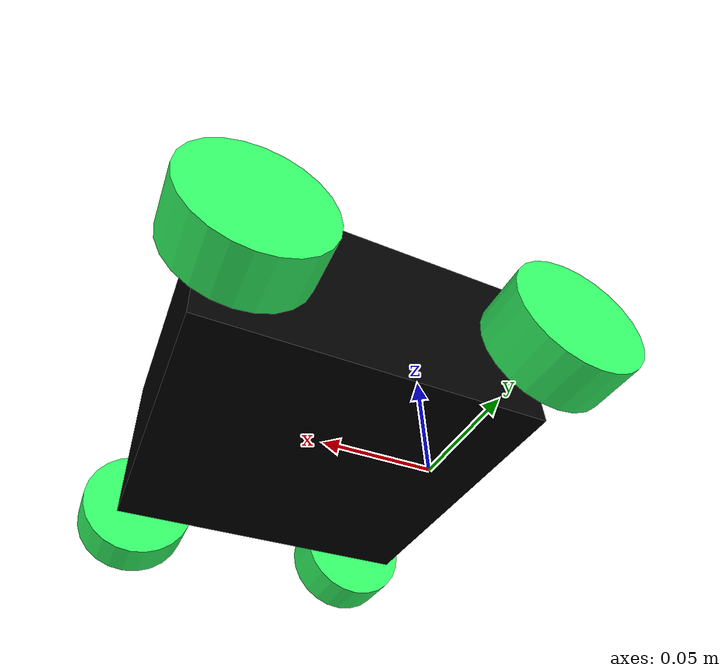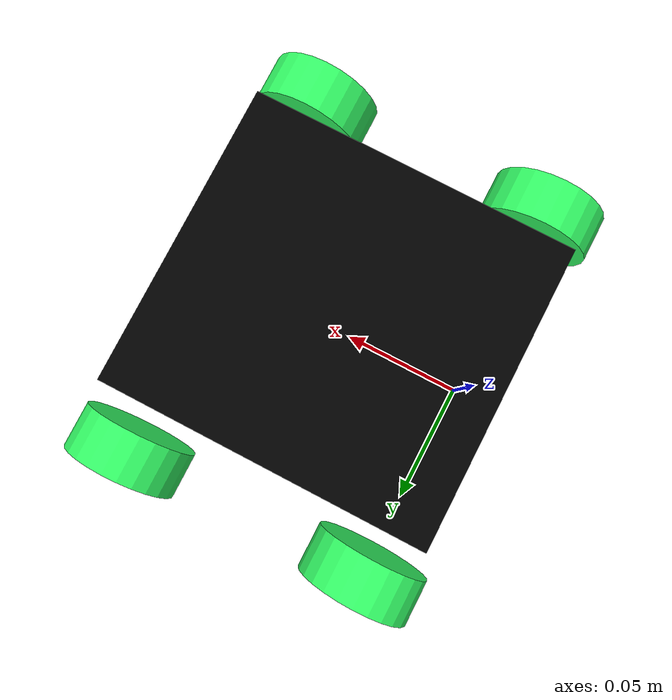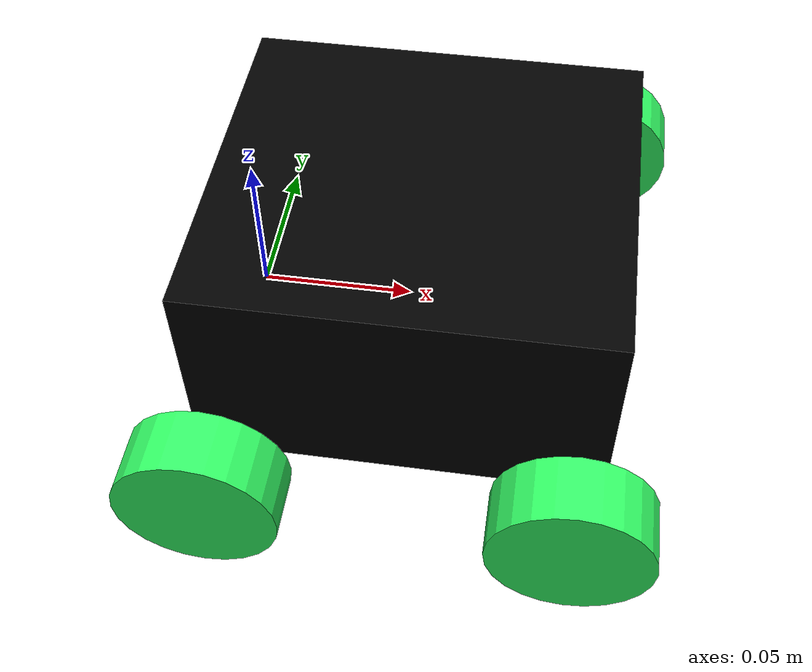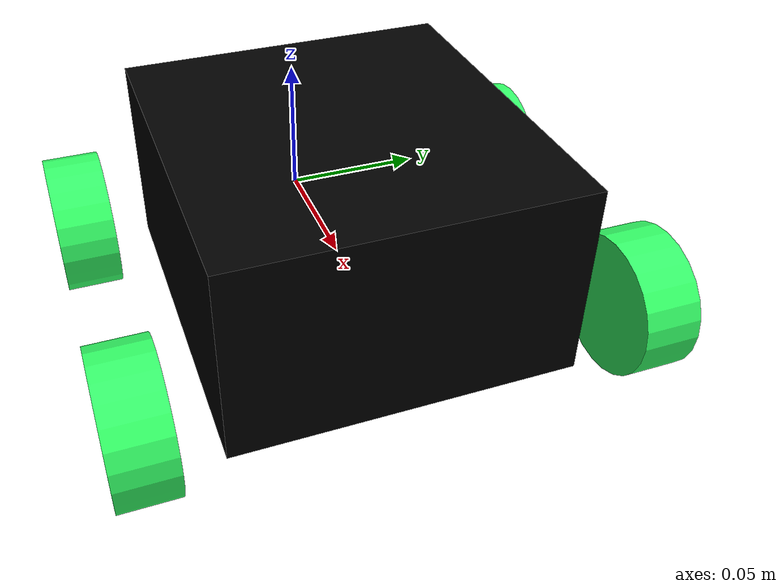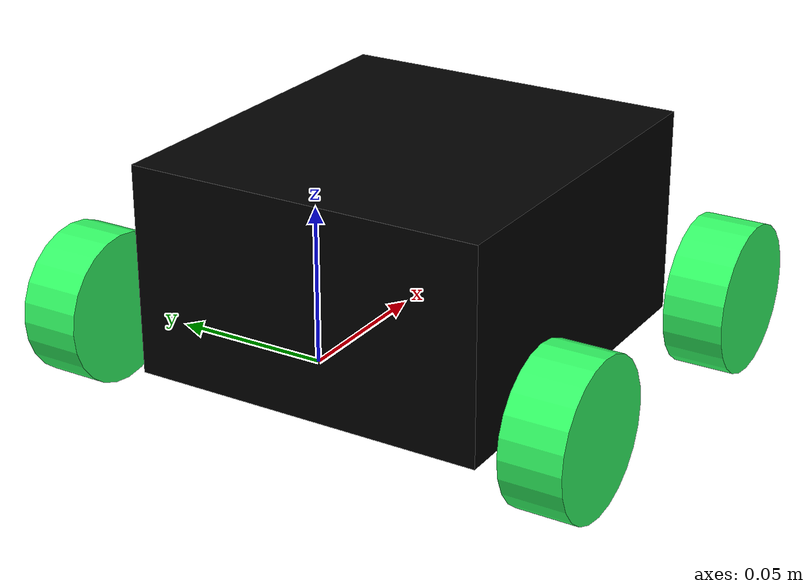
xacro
<?xml version="1.0"?>
<robot xmlns:xacro="http://www.ros.org/wiki/xacro">

   <xacro:include filename="inertial_macros.xacro"/>

    <material name="white">
        <color rgba="1 1 1 1"/>
    </material>

    <material name="orange">
        <color rgba="1 0.3 0.1 1"/>
    </material>

    <material name="blue">
        <color rgba="0.2 0.2 1 1"/>
    </material>

    <material name="black">
        <color rgba="0 0 0 1"/>
    </material>

    <material name="red">
        <color rgba="1 0 0 1"/>
    </material>

    <material name="green">
        <color rgba="0.2 1 0.4 1"/>
    </material>

    <link name="base_link">

    </link>

     <!-- BASE_FOOTPRINT LINK -->

     <joint name="base_footprint_joint" type="fixed">
        <parent link="base_link"/>
        <child link="base_footprint"/>
        <origin xyz="0 0 0" rpy="0 0 0"/>
    </joint>

    <link name="base_footprint">
    </link>

<!-- Chassis -->

    <joint name="chassis_joint" type="fixed">

        <parent link="base_link"/>
        <child link="chassis"/>
        <origin xyz="-0.01 0 0"/>

    </joint>

    <link name="chassis">
        <visual>
            <origin xyz="0.065 0 0.02"/>
            <geometry>
                <box size="0.13 0.12 0.07"/>
            </geometry>
            <material name="black"/>
        </visual>
        <collision>
            <origin xyz="0.065 0 0.02" rpy="0 0 0"/>
            <geometry>
                <box size="0.13 0.12 0.07"/>
            </geometry>
        </collision>

        <xacro:inertial_box mass="0.5" x="0.13" y="0.12" z="0.07">
           <origin xyz="0.065 0 0.02" rpy="0 0 0"/>
       </xacro:inertial_box>

    </link>
    <gazebo reference="chassis">
        <material>Gazebo/Black</material>

    </gazebo>

<!-- Left Wheel -->

    <joint name="left_wheel_joint" type="continuous">

        <parent link="base_link"/>
        <child link="left_wheel"/>
        <origin xyz="0 0.085 0" rpy="-${pi/2} 0 0"/>
        <axis xyz="0 0 1"/>

    </joint>

    <link name="left_wheel">

        <visual>
            <geometry>
                <cylinder length="0.02" radius="0.025"/>
            </geometry>

            <material name="green"/>
        </visual>
        <collision>
            <geometry>
                <sphere  radius="0.025"/>
            </geometry>
        </collision>

        <xacro:inertial_cylinder mass="0.1" length="0.02" radius="0.025">
            <origin xyz="0 0 0" rpy="0 0 0"/>
        </xacro:inertial_cylinder>
    </link>

    <gazebo reference="left_wheel">
        <material>Gazebo/Green</material>

    </gazebo>

<!-- Right Wheel -->
     <joint name="right_wheel_joint" type="continuous">

        <parent link="base_link"/>
        <child link="right_wheel"/>
        <origin xyz="0 -0.085 0" rpy="${pi/2} 0 0"/>
        <axis xyz="0 0 -1"/>

    </joint>

    <link name="right_wheel">

        <visual>

            <geometry>
                <cylinder length="0.02" radius="0.025"/>
            </geometry>

            <material name="green"/>

        </visual>
        <collision>

            <geometry>
                <sphere  radius="0.025"/>
            </geometry>
        </collision>

        <xacro:inertial_cylinder mass="0.1" length="0.02" radius="0.025">
            <origin xyz="0 0 0" rpy="0 0 0"/>
        </xacro:inertial_cylinder>

    </link>

    <gazebo reference="right_wheel">
        <material>Gazebo/Green</material>

    </gazebo>

<!-- CASTER WHEEL -->

<joint name="left_caster_wheel_joint" type="fixed">

    <parent link="base_link"/>
    <child link="left_caster_wheel"/>
    <origin xyz="0.11 0.085 0" rpy="-${pi/2} 0 0"/>
    <axis xyz="0 0 1"/>

</joint>

<link name="left_caster_wheel">

    <visual>
        <geometry>
            <cylinder length="0.02" radius="0.025"/>
        </geometry>

        <material name="green"/>
    </visual>
    <collision>
        <geometry>
            <sphere  radius="0.025"/>
        </geometry>
    </collision>

    <xacro:inertial_cylinder mass="0.1" length="0.02" radius="0.025">
        <origin xyz="0 0 0" rpy="0 0 0"/>
    </xacro:inertial_cylinder>
</link>

<gazebo reference="left_caster_wheel">
    <material>Gazebo/Green</material>
    <mu1 value="0.001"/>
    <mu2 value="0.001"/>

</gazebo>

<joint name="right_caster_wheel_joint" type="fixed">

    <parent link="base_link"/>
    <child link="right_caster_wheel"/>
    <origin xyz="0.11 -0.085 0" rpy="${pi/2} 0 0"/>
    <axis xyz="0 0 -1"/>

</joint>

<link name="right_caster_wheel">

    <visual>

        <geometry>
            <cylinder length="0.02" radius="0.025"/>
        </geometry>

        <material name="green"/>

    </visual>
    <collision>

        <geometry>
            <sphere  radius="0.025"/>
        </geometry>
    </collision>

    <xacro:inertial_cylinder mass="0.1" length="0.02" radius="0.025">
        <origin xyz="0 0 0" rpy="0 0 0"/>
    </xacro:inertial_cylinder>

</link>

<gazebo reference="right_caster_wheel">
    <material>Gazebo/Green</material>
    <mu1 value="0.001"/>
    <mu2 value="0.001"/>
</gazebo>

</robot>
